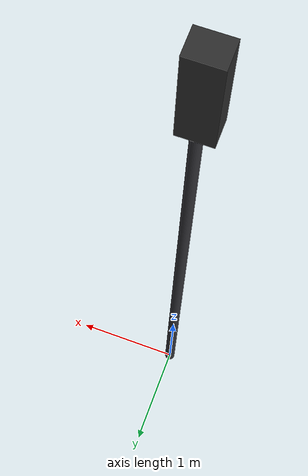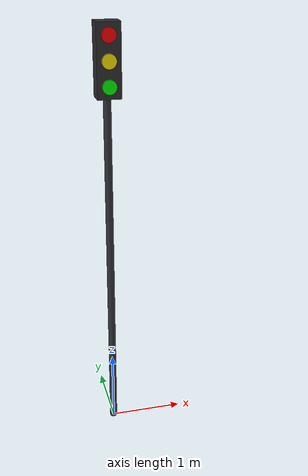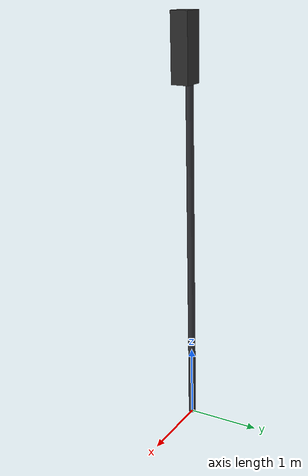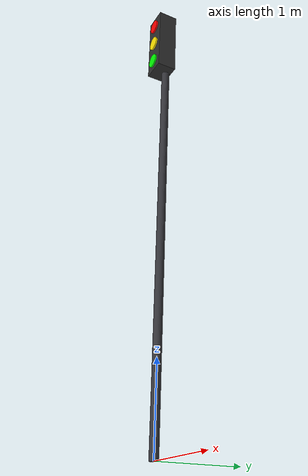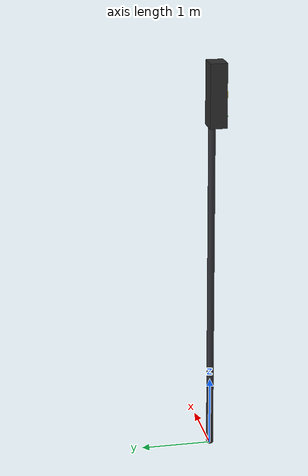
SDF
<?xml version="1.0" ?>
<sdf version="1.9">
  <model name="traffic_light">
    <static>true</static>
    <link name="link">

      <!-- Столб 0 .. 5 м -->
      <visual name="pole_visual">
        <pose>0 0 2.5 0 0 0</pose>
        <geometry><cylinder><radius>0.05</radius><length>5.0</length></cylinder></geometry>
        <material>
          <ambient>0.12 0.12 0.13 1</ambient>
          <diffuse>0.2 0.2 0.22 1</diffuse>
        </material>
      </visual>
      <collision name="pole_collision">
        <pose>0 0 2.5 0 0 0</pose>
        <geometry><cylinder><radius>0.05</radius><length>5.0</length></cylinder></geometry>
      </collision>

      <!-- Корпус -->
      <visual name="box_visual">
        <pose>0 -0.06 5.2 0 0 0</pose>
        <geometry><box><size>0.3 0.24 0.9</size></box></geometry>
        <material>
          <ambient>0.1 0.1 0.1 1</ambient>
          <diffuse>0.18 0.18 0.18 1</diffuse>
        </material>
      </visual>

      <!-- Лампы: тонкие диски (ось по Y, roll 90°), на передней грани (y=-0.19) -->
      <visual name="red_visual">
        <pose>0 -0.19 5.5 1.5708 0 0</pose>
        <geometry><cylinder><radius>0.09</radius><length>0.02</length></cylinder></geometry>
        <material>
          <ambient>0.9 0.05 0.05 1</ambient>
          <diffuse>1 0 0 1</diffuse>
          <emissive>0.9 0.05 0.05 1</emissive>
        </material>
      </visual>
      <visual name="yellow_visual">
        <pose>0 -0.19 5.2 1.5708 0 0</pose>
        <geometry><cylinder><radius>0.09</radius><length>0.02</length></cylinder></geometry>
        <material>
          <ambient>0.9 0.8 0.05 1</ambient>
          <diffuse>1 0.9 0 1</diffuse>
          <emissive>0.9 0.8 0.05 1</emissive>
        </material>
      </visual>
      <visual name="green_visual">
        <pose>0 -0.19 4.9 1.5708 0 0</pose>
        <geometry><cylinder><radius>0.09</radius><length>0.02</length></cylinder></geometry>
        <material>
          <ambient>0.05 0.9 0.05 1</ambient>
          <diffuse>0 1 0 1</diffuse>
          <emissive>0.05 0.9 0.05 1</emissive>
        </material>
      </visual>

    </link>
  </model>
</sdf>
